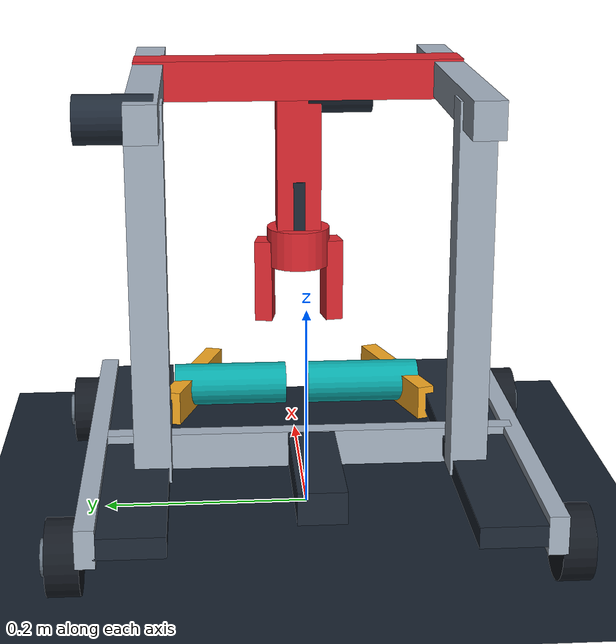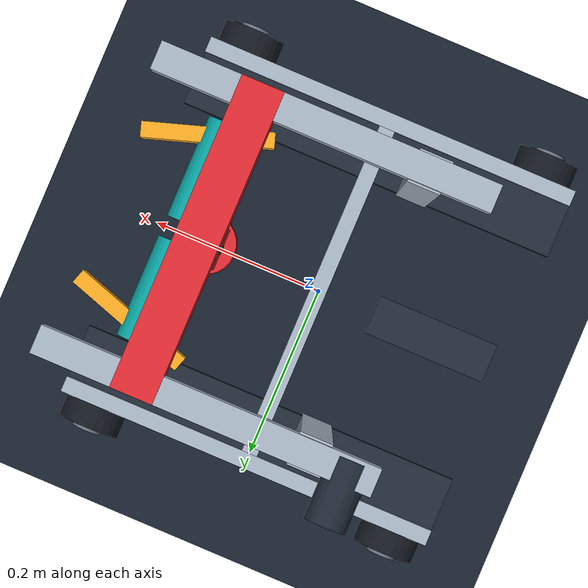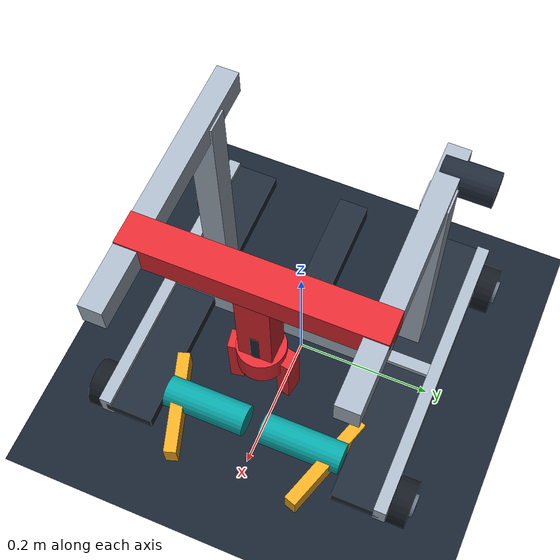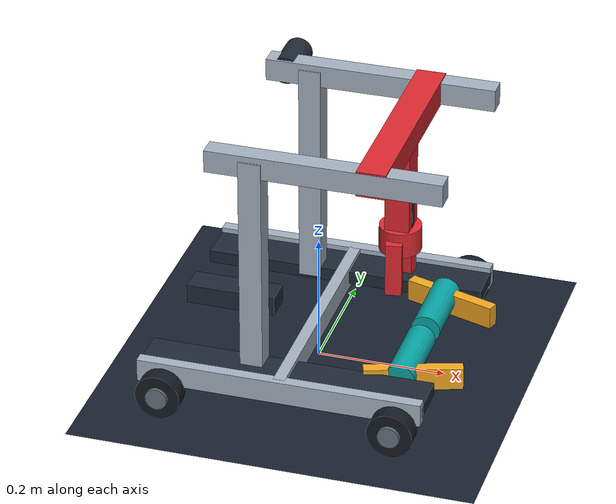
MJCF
<mujoco model="Cartesian Goal-Side Gantry"><compiler angle="degree" /><visual><global offwidth="800" offheight="600" /><quality offsamples="0" /><headlight ambient=".45 .45 .45" /></visual><worldbody><light pos="0 -1 3" castshadow="false" /><geom type="plane" size="2 2 .1" rgba=".09 .13 .18 1" /><geom type="box" pos="0 -0.205 0.059925" size="0.22 0.009 0.018" euler="0 0 0" rgba=".65 .7 .76 1" contype="0" conaffinity="0" /><geom type="box" pos="0 0.205 0.059925" size="0.22 0.009 0.018" euler="0 0 0" rgba=".65 .7 .76 1" contype="0" conaffinity="0" /><geom type="box" pos="0 0 0.059925" size="0.009 0.205 0.018" euler="0 0 0" rgba=".65 .7 .76 1" contype="0" conaffinity="0" /><geom type="box" pos="0 -0.16999999999999998 0.059925" size="0.22 0.035 0.01" euler="0 0 0" rgba=".12 .16 .21 1" contype="0" conaffinity="0" /><geom type="box" pos="0 0.16999999999999998 0.059925" size="0.22 0.035 0.01" euler="0 0 0" rgba=".12 .16 .21 1" contype="0" conaffinity="0" /><geom type="cylinder" pos="-0.18 -0.22599999999999998 0.034925" size="0.034925 0.015" euler="90 0 0" rgba=".08 .1 .13 1" contype="0" conaffinity="0" /><geom type="cylinder" pos="-0.18 -0.243 0.034925" size="0.016763999999999998 0.003" euler="90 0 0" rgba=".4 .45 .5 1" contype="0" conaffinity="0" /><geom type="cylinder" pos="0.18 -0.22599999999999998 0.034925" size="0.034925 0.015" euler="90 0 0" rgba=".08 .1 .13 1" contype="0" conaffinity="0" /><geom type="cylinder" pos="0.18 -0.243 0.034925" size="0.016763999999999998 0.003" euler="90 0 0" rgba=".4 .45 .5 1" contype="0" conaffinity="0" /><geom type="cylinder" pos="-0.18 0.22599999999999998 0.034925" size="0.034925 0.015" euler="90 0 0" rgba=".08 .1 .13 1" contype="0" conaffinity="0" /><geom type="cylinder" pos="-0.18 0.243 0.034925" size="0.016763999999999998 0.003" euler="90 0 0" rgba=".4 .45 .5 1" contype="0" conaffinity="0" /><geom type="cylinder" pos="0.18 0.22599999999999998 0.034925" size="0.034925 0.015" euler="90 0 0" rgba=".08 .1 .13 1" contype="0" conaffinity="0" /><geom type="cylinder" pos="0.18 0.243 0.034925" size="0.016763999999999998 0.003" euler="90 0 0" rgba=".4 .45 .5 1" contype="0" conaffinity="0" /><geom type="box" pos="-0.135 0.0 0.084925" size="0.07 0.022 0.015" euler="0 0 0" rgba=".12 .16 .21 1" contype="0" conaffinity="0" /><geom type="box" pos="-0.055 0.15 0.235" size="0.0175 0.0175 0.18" euler="0.0 0.0 0.0" rgba=".65 .7 .76 1" contype="0" conaffinity="0" /><geom type="box" pos="-0.055 -0.15 0.235" size="0.0175 0.0175 0.18" euler="0.0 0.0 0.0" rgba=".65 .7 .76 1" contype="0" conaffinity="0" /><geom type="box" pos="0.055 0.15 0.407" size="0.18 0.015 0.0175" euler="0.0 0.0 0.0" rgba=".65 .7 .76 1" contype="0" conaffinity="0" /><geom type="box" pos="0.055 -0.15 0.407" size="0.18 0.015 0.0175" euler="0.0 0.0 0.0" rgba=".65 .7 .76 1" contype="0" conaffinity="0" /><geom type="box" pos="0.128 0.0 0.407" size="0.0225 0.165 0.02" euler="0.0 0.0 0.0" rgba=".87 .16 .19 1" contype="0" conaffinity="0" /><geom type="box" pos="0.128 0.0 0.326" size="0.019 0.0225 0.09" euler="0.0 0.0 0.0" rgba=".87 .16 .19 1" contype="0" conaffinity="0" /><geom type="cylinder" pos="0.128 0.0 0.232" size="0.0325 0.02" euler="0.0 0.0 0.0" rgba=".87 .16 .19 1" contype="0" conaffinity="0" /><geom type="box" pos="0.128 0.035 0.196" size="0.0125 0.009 0.0425" euler="0.0 0.0 -10.0" rgba=".87 .16 .19 1" contype="0" conaffinity="0" /><geom type="box" pos="0.128 -0.035 0.196" size="0.0125 0.009 0.0425" euler="0.0 0.0 10.0" rgba=".87 .16 .19 1" contype="0" conaffinity="0" /><geom type="cylinder" pos="0.166 0.072 0.066" size="0.0225 0.06" euler="90.0 0.0 0.0" rgba=".03 .65 .65 1" contype="0" conaffinity="0" /><geom type="cylinder" pos="0.166 -0.072 0.066" size="0.0225 0.06" euler="90.0 0.0 0.0" rgba=".03 .65 .65 1" contype="0" conaffinity="0" /><geom type="box" pos="0.181 0.112 0.06" size="0.075 0.009 0.0175" euler="0.0 0.0 -18.0" rgba=".96 .66 .13 1" contype="0" conaffinity="0" /><geom type="box" pos="0.181 -0.112 0.06" size="0.075 0.009 0.0175" euler="0.0 0.0 18.0" rgba=".96 .66 .13 1" contype="0" conaffinity="0" /><geom type="cylinder" pos="-0.095 0.174 0.407" size="0.022 0.035" euler="90.0 0.0 0.0" rgba=".12 .16 .21 1" contype="0" conaffinity="0" /><geom type="cylinder" pos="0.128 -0.042 0.392" size="0.021 0.0325" euler="90.0 0.0 0.0" rgba=".12 .16 .21 1" contype="0" conaffinity="0" /><geom type="cylinder" pos="0.128 0.0 0.275" size="0.02 0.0275" euler="0.0 0.0 0.0" rgba=".12 .16 .21 1" contype="0" conaffinity="0" /></worldbody></mujoco>
